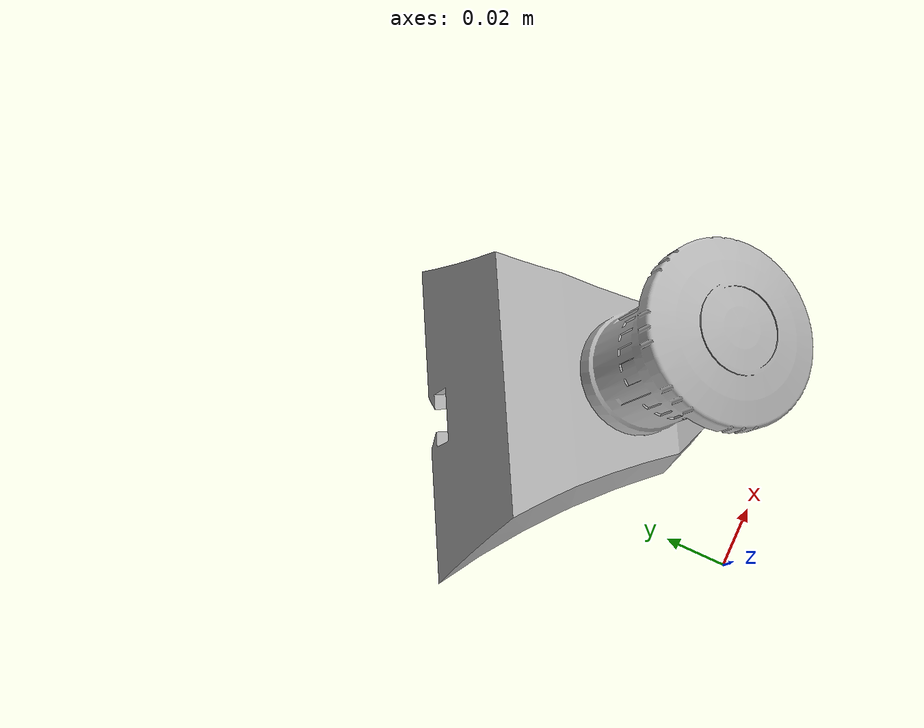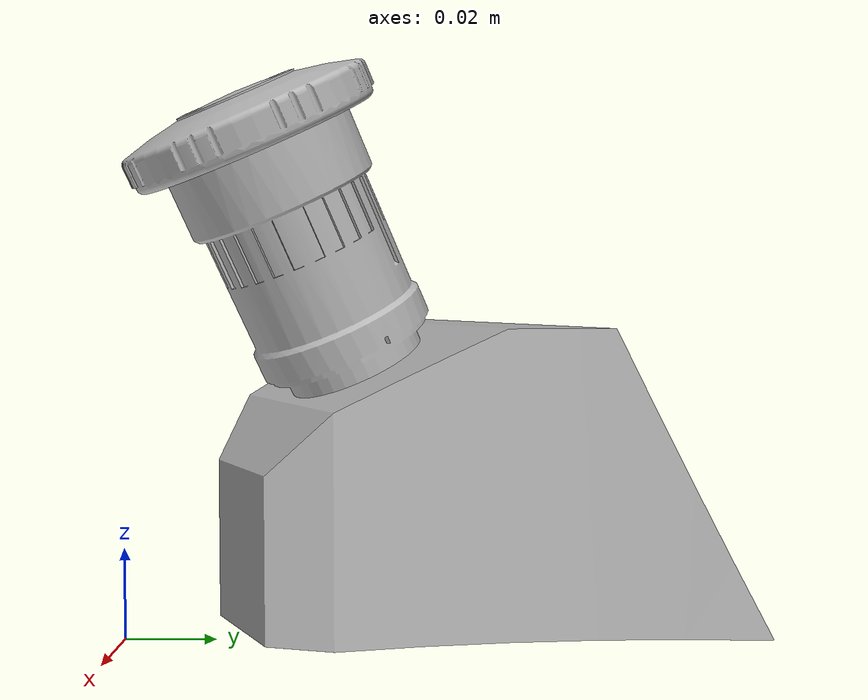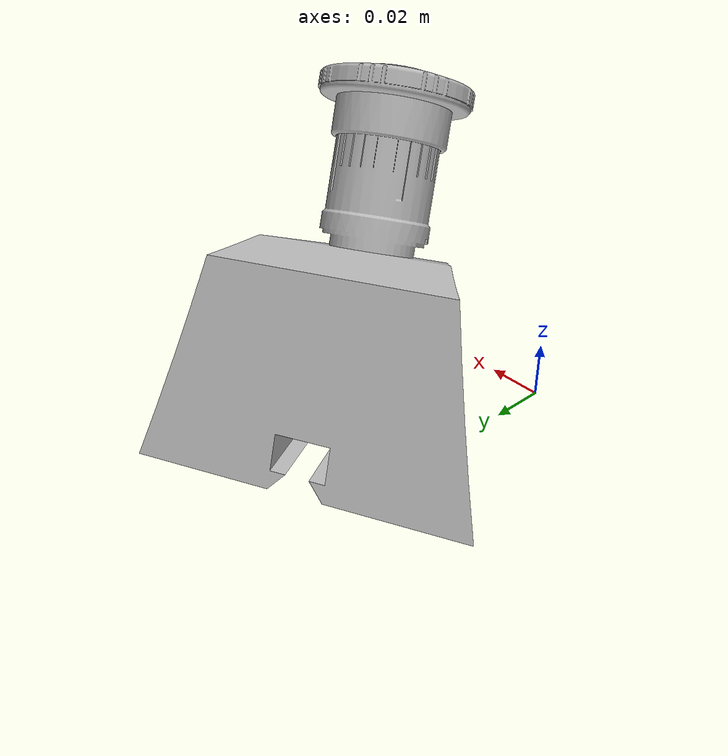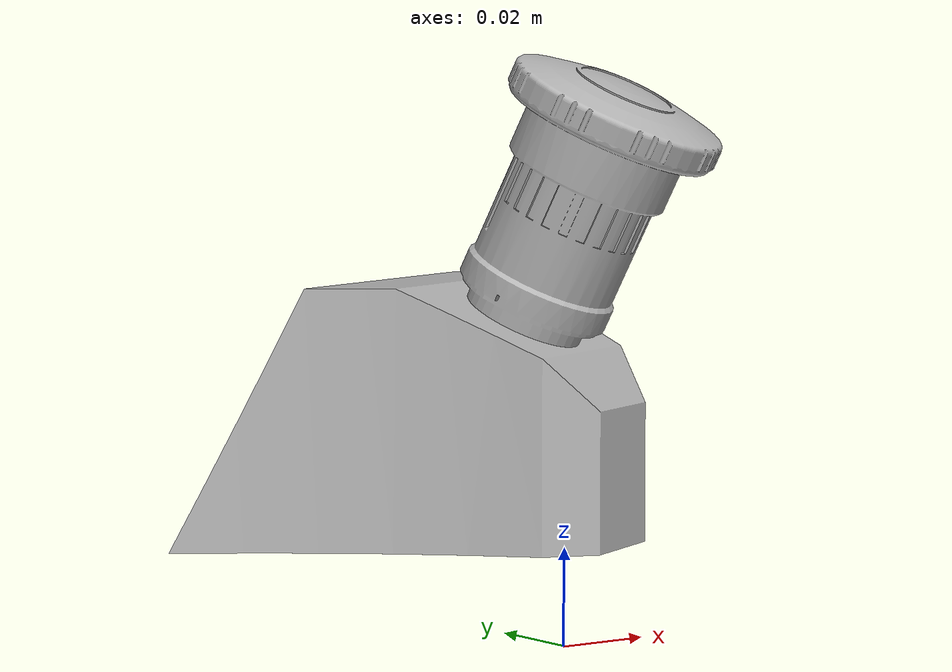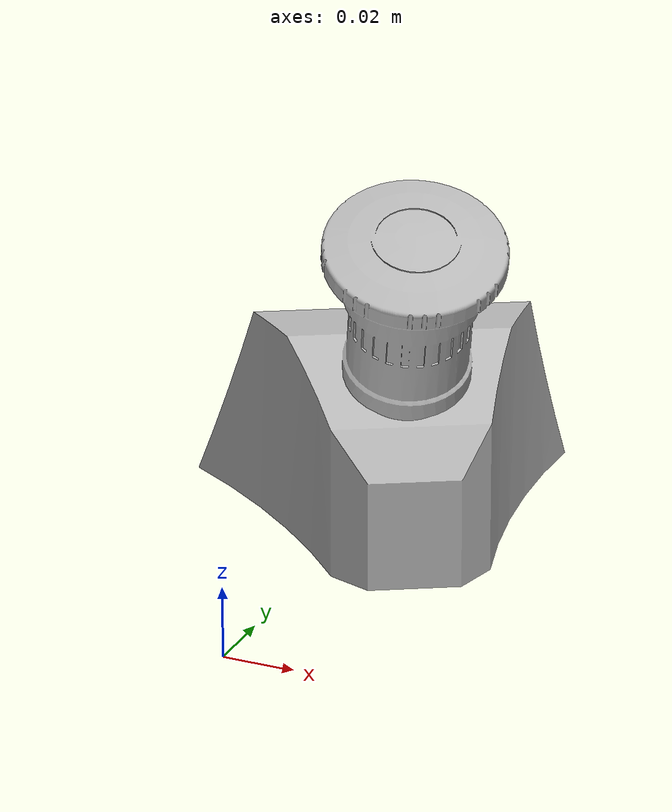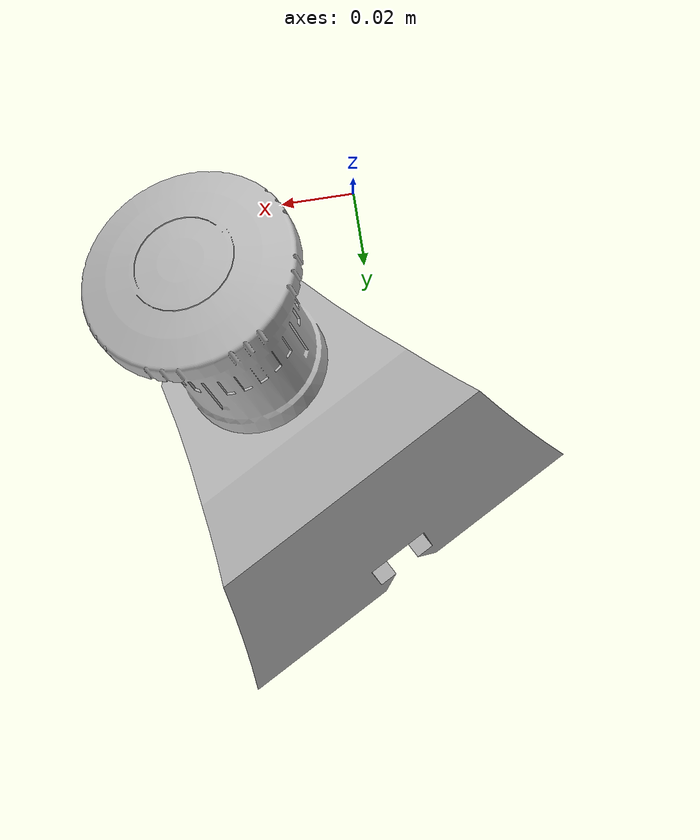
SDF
<?xml version="1.0" ?>
<sdf version="1.5">
  <model name="e_stop">

  <material name="WHITE_MTL">
    <color rgba="0.0 1.0 0.0 1.0"/> <!-- rviz green color -->
  </material>

    <link name="link">
      <inertial>
        <mass>15</mass>
        <inertia>
          <ixx>0.0</ixx>
          <ixy>0.0</ixy>
          <ixz>0.0</ixz>
          <iyy>0.0</iyy>
          <iyz>0.0</iyz>
          <izz>0.1</izz>
        </inertia>
      </inertial>
      <collision name="collision">
        <pose>-0.0 0.0 0.0 0.0 0.0 0.5</pose>
        <geometry>
          <mesh>
            <uri>model://e_stop/meshes/button.stl</uri>

          </mesh>
        </geometry>
      </collision>
      <!--visual name="visual"-->
	<visual>
        <pose>0.0 0.0 0.0 0.0 0.0 0.5</pose>
        <geometry>
          <mesh>
            <uri>model://e_stop/meshes/button.stl</uri>
   	    <scale> 1.0 1.0 1.0 </scale>
          </mesh>
        </geometry>
         <material>
          </material>
      </visual>
    </link>
    <static>1</static>
  </model>
</sdf>
